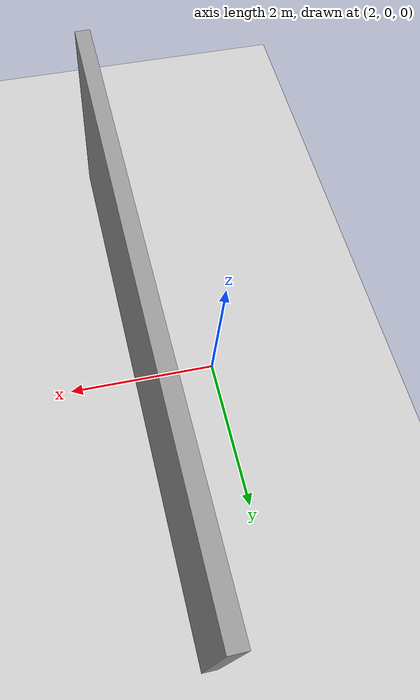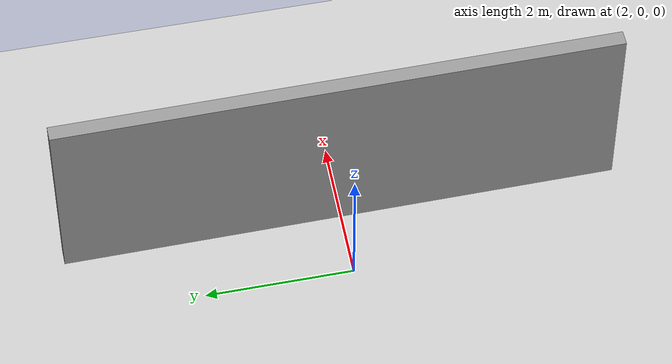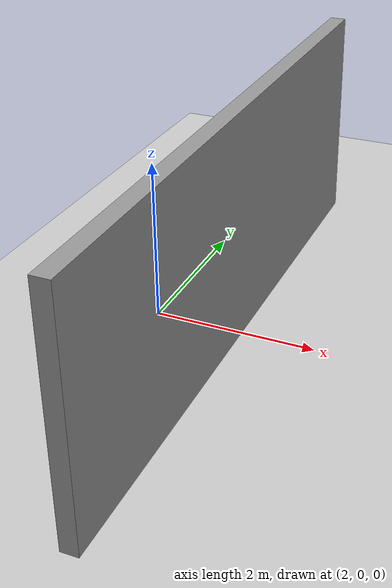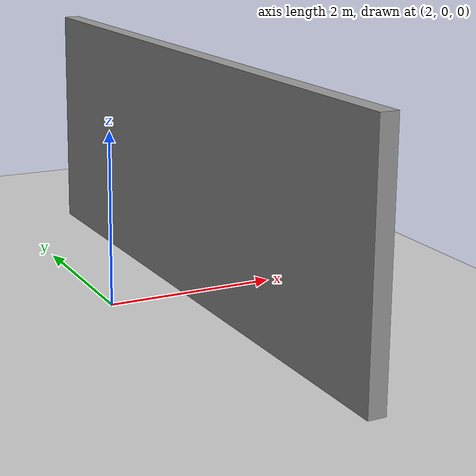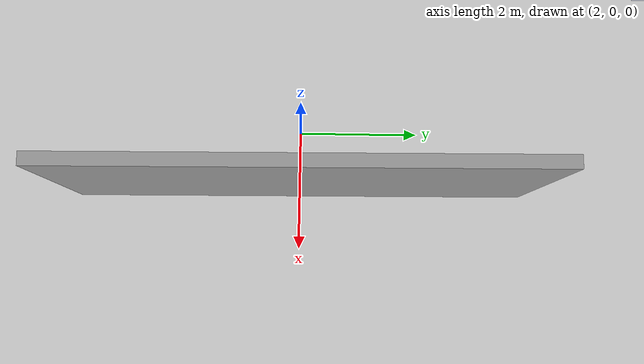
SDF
<?xml version="1.0" ?>
<sdf version="1.5">
  <world name="default">

    <!-- Lights -->
    <include>
      <uri>model://sun</uri>
    </include>

		<light type="directional" name="my_light">
			<pose>0 0 30 0 0 0</pose>
			<diffuse>1.0 1.0 1.0 1.0</diffuse>
			<specular>.1 .1 .1 1</specular>
			<attenuation>
				  <range>100</range>
			</attenuation>
			<direction>0 0 -1</direction>
		</light>

    <!-- A ground plane -->
    <include>
      <uri>model://ground_plane</uri>
    </include>

    <include>
      <uri>model://asphalt_plane</uri>
    </include>

 		<model name="wall">
			<include>
		    <uri>model://grey_wall</uri>
		 		<pose>3.0 0.0 0.0 0 0 -1.56</pose>
		    <static>1</static>
		  </include>
		</model>

		<!--PHYSICS-->
		<physics name='default_physics' default='0' type='ode'>
      <gravity>0 0 -9.8066</gravity>
      <ode>
        <solver>
          <type>quick</type>
          <iters>10</iters>
          <sor>1.3</sor>
          <use_dynamic_moi_rescaling>0</use_dynamic_moi_rescaling>
        </solver>
        <constraints>
          <cfm>0</cfm>
          <erp>0.2</erp>
          <contact_max_correcting_vel>100</contact_max_correcting_vel>
          <contact_surface_layer>0.001</contact_surface_layer>
        </constraints>
      </ode>
      <max_step_size>0.002</max_step_size>
      <real_time_factor>1</real_time_factor>
      <real_time_update_rate>500</real_time_update_rate>
      <magnetic_field>6.0e-6 2.3e-5 -4.2e-5</magnetic_field>
    </physics>
  </world>
</sdf>

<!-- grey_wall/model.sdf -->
<sdf version="1.5">
  <model name="grey_wall">
    <static>true</static>
    <link name="link">
      <pose>0 0 1.4 0 0 0</pose>
      <collision name="collision">
        <geometry>
          <box>
            <size>7.5 0.2 2.8</size>
          </box>
        </geometry>
      </collision>
      <visual name="visual">
        <cast_shadows>false</cast_shadows>
        <geometry>
          <box>
            <size>7.5 0.2 2.8</size>
          </box>
        </geometry>
        <material>
          <script>
            <uri>model://../model_source/models/grey_wall/materials/scripts</uri>
            <uri>model://../model_source/models/grey_wall/materials/textures</uri>
            <name>vrc/grey_wall</name>
          </script>
        </material>
      </visual>
    </link>
  </model>
</sdf>
